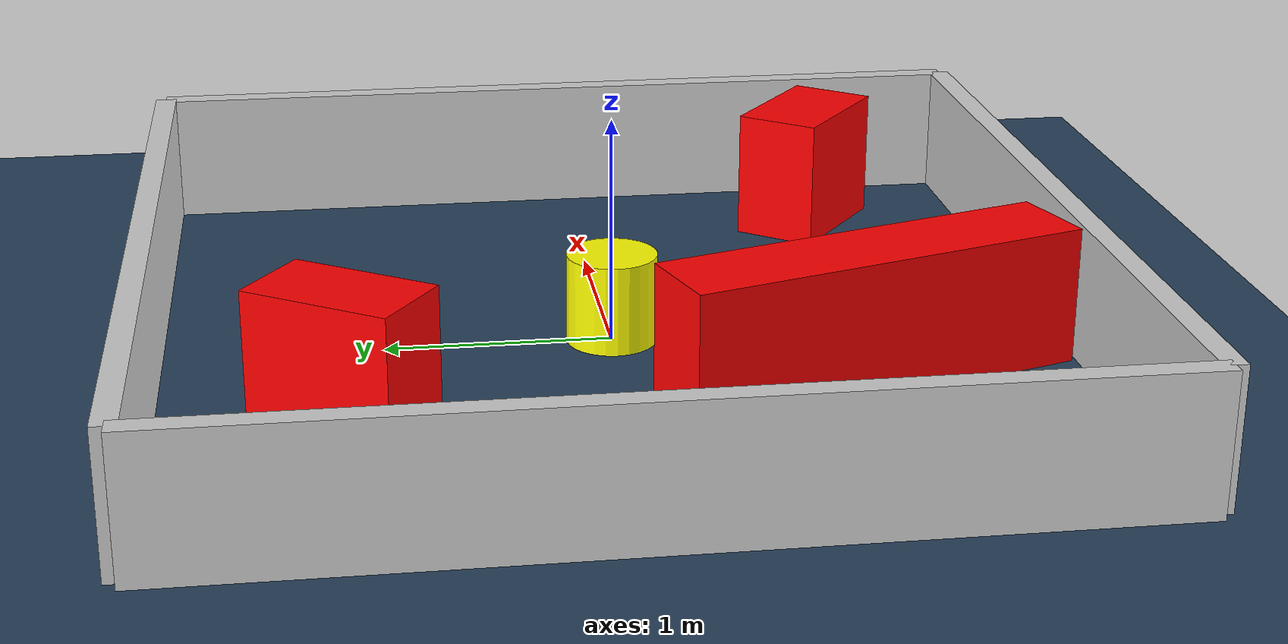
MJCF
<?xml version="1.0" ?>
<mujoco model="generated_environment">
  <option timestep="0.01" integrator="RK4" cone="elliptic"/>
  <default>
    <geom density="1"/>
  </default>
  <asset>
    <texture builtin="gradient" height="3072" rgb1="0.3 0.5 0.7" rgb2="0 0 0" type="skybox" width="512"/>
    <texture builtin="checker" height="300" mark="edge" markrgb="0.8 0.8 0.8" name="groundplane" rgb1="0.2 0.3 0.4" rgb2="0.1 0.2 0.3" type="2d" width="300"/>
    <material name="groundplane" reflectance="0.2" texrepeat="5 5" texture="groundplane" texuniform="true"/>
    <material name="robot" rgba="0.0 1.0 0.0 1"/>
  </asset>
  <worldbody>
    <light dir="0 0 -1" directional="true" pos="0 0 1.5"/>
    <geom condim="4" friction="1.0 0.005 0.001" material="groundplane" name="floor" size="0 0 0.05" type="plane"/>
    <body name="walls">
      <geom name="wall_1" condim="4" pos="-2.0 0.0 0.3" rgba="0.800000011920929 0.800000011920929 0.800000011920929 1.0" size="0.05 2.0 0.3" type="box"/>
      <geom name="wall_2" condim="4" pos="2.0 0.0 0.3" rgba="0.800000011920929 0.800000011920929 0.800000011920929 1.0" size="0.05 2.0 0.3" type="box"/>
      <geom name="wall_3" condim="4" pos="0.0 -2.0 0.3" rgba="0.800000011920929 0.800000011920929 0.800000011920929 1.0" size="2.0 0.05 0.3" type="box"/>
      <geom name="wall_4" condim="4" pos="0.0 2.0 0.3" rgba="0.800000011920929 0.800000011920929 0.800000011920929 1.0" size="2.0 0.05 0.3" type="box"/>
    </body>
    <body name="robot">
      <joint name="joint_x" type="slide" pos="0 0 0" axis="1 0 0"/>
      <joint name="joint_y" type="slide" pos="0 0 0" axis="0 1 0"/>
      <geom name="robot" type="sphere" pos="0.3 0.0 0.2" size="0.05" mass="5." friction="1.0 0.005 0.0001" condim="4" rgba="0.5 0.5 0.5 1.0"/>
      <site name="sensor_ball"/>
    </body>
    <body name="obstacle_movable_1">
      <geom name="obstacle_movable_1" condim="4" pos="0.0 0.0 0.2" euler="0 0 0.0" friction="1.0 0.005 0.001" rgba="1.0 1.0 0.0 1.0" size="0.2 0.2 0.0" type="cylinder" mass="0.1"/>
      <joint type="free"/>
    </body>
    <body name="obstacle_2_static">
      <geom name="obstacle_2_static" condim="4" pos="-0.7907886009732199 1.18606741310621 0.3" euler="0 0 236.20673278301223" friction="1.0 0.005 0.001" rgba="1 0 0 1" size="0.3359517298921837 0.2 0.3" type="box"/>
    </body>
    <body name="obstacle_3_static">
      <geom name="obstacle_3_static" condim="4" pos="1.458684238172716 -1.1696971562856036 0.3" euler="0 0 322.3416464016354" friction="1.0 0.005 0.001" rgba="1 0 0 1" size="0.32205651016527537 0.2 0.3" type="box"/>
    </body>
    <body name="obstacle_4_static">
      <geom name="obstacle_4_static" condim="4" pos="-0.5935935479252122 -1.0081468664721984 0.3" euler="0 0 107.70237033521296" friction="1.0 0.005 0.001" rgba="1 0 0 1" size="0.9064160268371537 0.2 0.3" type="box"/>
    </body>
  </worldbody>
  <actuator>
    <motor name="actuator_x" joint="joint_x" gear="1" ctrlrange="-1 1"/>
    <motor name="actuator_y" joint="joint_y" gear="1" ctrlrange="-1 1"/>
  </actuator>
</mujoco>
